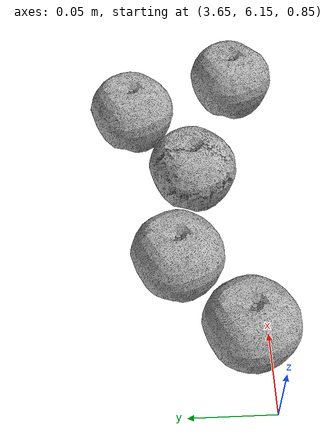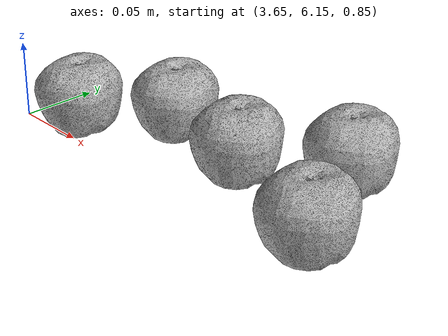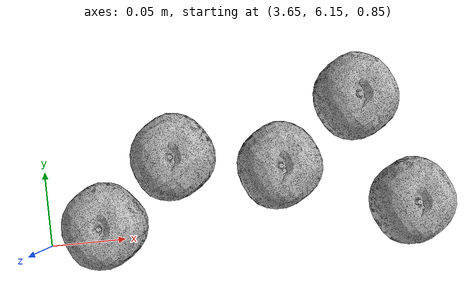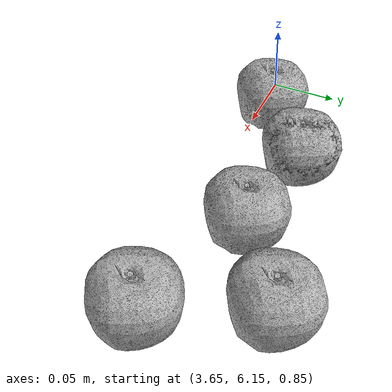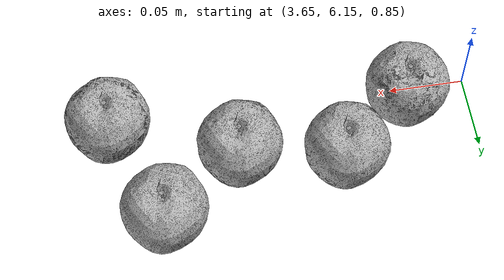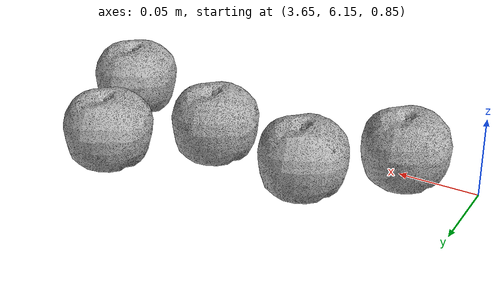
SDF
<sdf version="1.6">
 <world name="default">
  <model name="apple_clone_17">
   <link name="link_0">
    <inertial>
     <mass>1</mass>
     <inertia>
      <ixx>0.166667</ixx>
      <ixy>0</ixy>
      <ixz>0</ixz>
      <iyy>0.166667</iyy>
      <iyz>0</iyz>
      <izz>0.166667</izz>
     </inertia>
    </inertial>
    <visual name="visual">
     <geometry><mesh><uri>model://apple/meshes/apple.dae</uri><scale>1 1 1</scale></mesh></geometry>
    </visual>
    <collision name="collision">
     <geometry><mesh><uri>model://apple/meshes/apple.dae</uri><scale>1 1 1</scale></mesh></geometry>
     <surface>
      <friction>
       <ode><mu>1</mu><mu2>1</mu2><fdir1>0 0 0</fdir1><slip1>0</slip1><slip2>0</slip2></ode>
       <torsional>
        <coefficient>1</coefficient>
        <patch_radius>0</patch_radius>
        <surface_radius>0</surface_radius>
        <use_patch_radius>1</use_patch_radius>
        <ode><slip>0</slip></ode>
       </torsional>
      </friction>
      <bounce><restitution_coefficient>0</restitution_coefficient><threshold>1e+06</threshold></bounce>
      <contact>
       <collide_without_contact>0</collide_without_contact>
       <collide_without_contact_bitmask>1</collide_without_contact_bitmask>
       <collide_bitmask>1</collide_bitmask>
       <ode>
        <soft_cfm>0</soft_cfm>
        <soft_erp>0.2</soft_erp>
        <kp>1e+13</kp>
        <kd>1</kd>
        <max_vel>0.01</max_vel>
        <min_depth>0</min_depth>
       </ode>
       <bullet>
        <split_impulse>1</split_impulse>
        <split_impulse_penetration_threshold>-0.01</split_impulse_penetration_threshold>
        <soft_cfm>0</soft_cfm>
        <soft_erp>0.2</soft_erp>
        <kp>1e+13</kp>
        <kd>1</kd>
       </bullet>
      </contact>
     </surface>
    </collision>
   </link>
   <static>1</static>
   <pose>3.87913 6.15681 0.862702 0 -0 0</pose>
  </model>
  <model name="apple_clone_21">
   <link name="link_0">
    <inertial>
     <mass>1</mass>
     <inertia>
      <ixx>0.166667</ixx>
      <ixy>0</ixy>
      <ixz>0</ixz>
      <iyy>0.166667</iyy>
      <iyz>0</iyz>
      <izz>0.166667</izz>
     </inertia>
    </inertial>
    <visual name="visual">
     <geometry><mesh><uri>model://apple/meshes/apple.dae</uri><scale>1 1 1</scale></mesh></geometry>
    </visual>
    <collision name="collision">
     <geometry><mesh><uri>model://apple/meshes/apple.dae</uri><scale>1 1 1</scale></mesh></geometry>
     <surface>
      <friction>
       <ode><mu>1</mu><mu2>1</mu2><fdir1>0 0 0</fdir1><slip1>0</slip1><slip2>0</slip2></ode>
       <torsional>
        <coefficient>1</coefficient>
        <patch_radius>0</patch_radius>
        <surface_radius>0</surface_radius>
        <use_patch_radius>1</use_patch_radius>
        <ode><slip>0</slip></ode>
       </torsional>
      </friction>
      <bounce><restitution_coefficient>0</restitution_coefficient><threshold>1e+06</threshold></bounce>
      <contact>
       <collide_without_contact>0</collide_without_contact>
       <collide_without_contact_bitmask>1</collide_without_contact_bitmask>
       <collide_bitmask>1</collide_bitmask>
       <ode>
        <soft_cfm>0</soft_cfm>
        <soft_erp>0.2</soft_erp>
        <kp>1e+13</kp>
        <kd>1</kd>
        <max_vel>0.01</max_vel>
        <min_depth>0</min_depth>
       </ode>
       <bullet>
        <split_impulse>1</split_impulse>
        <split_impulse_penetration_threshold>-0.01</split_impulse_penetration_threshold>
        <soft_cfm>0</soft_cfm>
        <soft_erp>0.2</soft_erp>
        <kp>1e+13</kp>
        <kd>1</kd>
       </bullet>
      </contact>
     </surface>
    </collision>
   </link>
   <static>1</static>
   <pose>3.68326 6.15984 0.862702 0 -0 0</pose>
  </model>
  <model name="apple_clone_22">
   <link name="link_0">
    <inertial>
     <mass>1</mass>
     <inertia>
      <ixx>0.166667</ixx>
      <ixy>0</ixy>
      <ixz>0</ixz>
      <iyy>0.166667</iyy>
      <iyz>0</iyz>
      <izz>0.166667</izz>
     </inertia>
    </inertial>
    <visual name="visual">
     <geometry><mesh><uri>model://apple/meshes/apple.dae</uri><scale>1 1 1</scale></mesh></geometry>
    </visual>
    <collision name="collision">
     <geometry><mesh><uri>model://apple/meshes/apple.dae</uri><scale>1 1 1</scale></mesh></geometry>
     <surface>
      <friction>
       <ode><mu>1</mu><mu2>1</mu2><fdir1>0 0 0</fdir1><slip1>0</slip1><slip2>0</slip2></ode>
       <torsional>
        <coefficient>1</coefficient>
        <patch_radius>0</patch_radius>
        <surface_radius>0</surface_radius>
        <use_patch_radius>1</use_patch_radius>
        <ode><slip>0</slip></ode>
       </torsional>
      </friction>
      <bounce><restitution_coefficient>0</restitution_coefficient><threshold>1e+06</threshold></bounce>
      <contact>
       <collide_without_contact>0</collide_without_contact>
       <collide_without_contact_bitmask>1</collide_without_contact_bitmask>
       <collide_bitmask>1</collide_bitmask>
       <ode>
        <soft_cfm>0</soft_cfm>
        <soft_erp>0.2</soft_erp>
        <kp>1e+13</kp>
        <kd>1</kd>
        <max_vel>0.01</max_vel>
        <min_depth>0</min_depth>
       </ode>
       <bullet>
        <split_impulse>1</split_impulse>
        <split_impulse_penetration_threshold>-0.01</split_impulse_penetration_threshold>
        <soft_cfm>0</soft_cfm>
        <soft_erp>0.2</soft_erp>
        <kp>1e+13</kp>
        <kd>1</kd>
       </bullet>
      </contact>
     </surface>
    </collision>
   </link>
   <static>1</static>
   <pose>3.73073 6.19916 0.862702 0 -0 0</pose>
  </model>
  <model name="apple_clone_23">
   <link name="link_0">
    <inertial>
     <mass>1</mass>
     <inertia>
      <ixx>0.166667</ixx>
      <ixy>0</ixy>
      <ixz>0</ixz>
      <iyy>0.166667</iyy>
      <iyz>0</iyz>
      <izz>0.166667</izz>
     </inertia>
    </inertial>
    <visual name="visual">
     <geometry><mesh><uri>model://apple/meshes/apple.dae</uri><scale>1 1 1</scale></mesh></geometry>
    </visual>
    <collision name="collision">
     <geometry><mesh><uri>model://apple/meshes/apple.dae</uri><scale>1 1 1</scale></mesh></geometry>
     <surface>
      <friction>
       <ode><mu>1</mu><mu2>1</mu2><fdir1>0 0 0</fdir1><slip1>0</slip1><slip2>0</slip2></ode>
       <torsional>
        <coefficient>1</coefficient>
        <patch_radius>0</patch_radius>
        <surface_radius>0</surface_radius>
        <use_patch_radius>1</use_patch_radius>
        <ode><slip>0</slip></ode>
       </torsional>
      </friction>
      <bounce><restitution_coefficient>0</restitution_coefficient><threshold>1e+06</threshold></bounce>
      <contact>
       <collide_without_contact>0</collide_without_contact>
       <collide_without_contact_bitmask>1</collide_without_contact_bitmask>
       <collide_bitmask>1</collide_bitmask>
       <ode>
        <soft_cfm>0</soft_cfm>
        <soft_erp>0.2</soft_erp>
        <kp>1e+13</kp>
        <kd>1</kd>
        <max_vel>0.01</max_vel>
        <min_depth>0</min_depth>
       </ode>
       <bullet>
        <split_impulse>1</split_impulse>
        <split_impulse_penetration_threshold>-0.01</split_impulse_penetration_threshold>
        <soft_cfm>0</soft_cfm>
        <soft_erp>0.2</soft_erp>
        <kp>1e+13</kp>
        <kd>1</kd>
       </bullet>
      </contact>
     </surface>
    </collision>
   </link>
   <static>1</static>
   <pose>3.79777 6.18724 0.862702 0 -0 0</pose>
  </model>
  <model name="apple_clone_24">
   <link name="link_0">
    <inertial>
     <mass>1</mass>
     <inertia>
      <ixx>0.166667</ixx>
      <ixy>0</ixy>
      <ixz>0</ixz>
      <iyy>0.166667</iyy>
      <iyz>0</iyz>
      <izz>0.166667</izz>
     </inertia>
    </inertial>
    <visual name="visual">
     <geometry><mesh><uri>model://apple/meshes/apple.dae</uri><scale>1 1 1</scale></mesh></geometry>
    </visual>
    <collision name="collision">
     <geometry><mesh><uri>model://apple/meshes/apple.dae</uri><scale>1 1 1</scale></mesh></geometry>
     <surface>
      <friction>
       <ode><mu>1</mu><mu2>1</mu2><fdir1>0 0 0</fdir1><slip1>0</slip1><slip2>0</slip2></ode>
       <torsional>
        <coefficient>1</coefficient>
        <patch_radius>0</patch_radius>
        <surface_radius>0</surface_radius>
        <use_patch_radius>1</use_patch_radius>
        <ode><slip>0</slip></ode>
       </torsional>
      </friction>
      <bounce><restitution_coefficient>0</restitution_coefficient><threshold>1e+06</threshold></bounce>
      <contact>
       <collide_without_contact>0</collide_without_contact>
       <collide_without_contact_bitmask>1</collide_without_contact_bitmask>
       <collide_bitmask>1</collide_bitmask>
       <ode>
        <soft_cfm>0</soft_cfm>
        <soft_erp>0.2</soft_erp>
        <kp>1e+13</kp>
        <kd>1</kd>
        <max_vel>0.01</max_vel>
        <min_depth>0</min_depth>
       </ode>
       <bullet>
        <split_impulse>1</split_impulse>
        <split_impulse_penetration_threshold>-0.01</split_impulse_penetration_threshold>
        <soft_cfm>0</soft_cfm>
        <soft_erp>0.2</soft_erp>
        <kp>1e+13</kp>
        <kd>1</kd>
       </bullet>
      </contact>
     </surface>
    </collision>
   </link>
   <static>1</static>
   <pose>3.85003 6.22594 0.862702 0 -0 0</pose>
  </model>
 </world>
</sdf>
